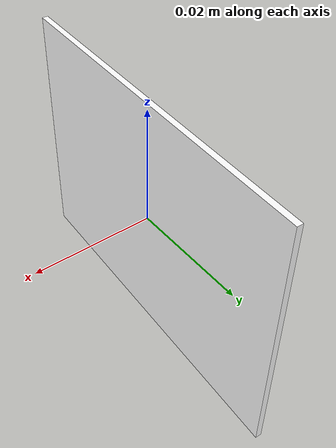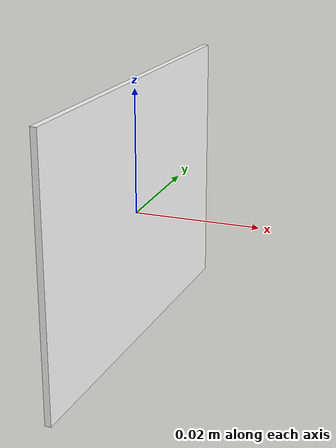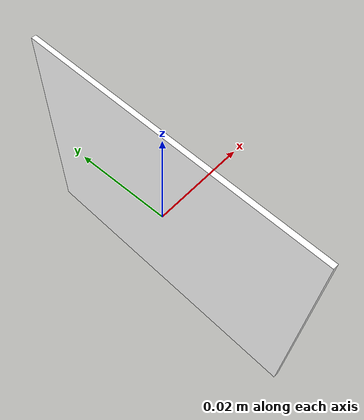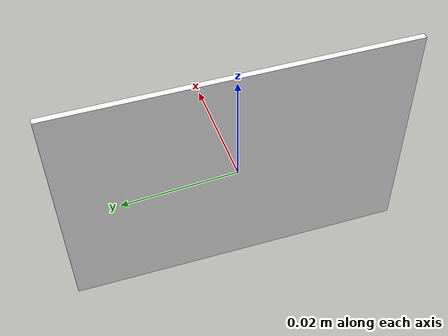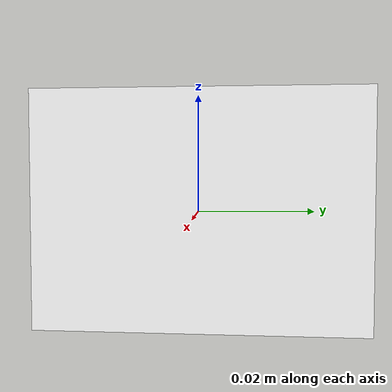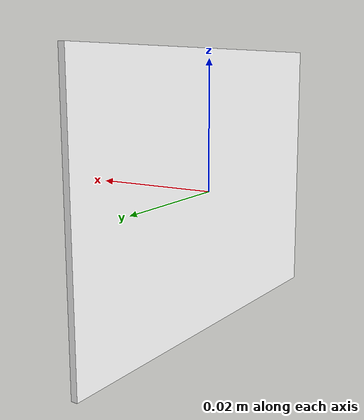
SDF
<?xml version='1.0'?>
<sdf version='1.6'>
  <model name='level2_pressed'>
    <link name='link_0'>
      <pose frame=''>4e-06 -2e-06 0 0 0 -1.62013</pose>
      <inertial>
        <mass>1</mass>
        <inertia>
          <ixx>0.166667</ixx>
          <ixy>0</ixy>
          <ixz>0</ixz>
          <iyy>0.166667</iyy>
          <iyz>0</iyz>
          <izz>0.166667</izz>
        </inertia>
        <pose frame=''>0 0 0 0 -0 0</pose>
      </inertial>
      <self_collide>0</self_collide>
      <kinematic>0</kinematic>
      <gravity>1</gravity>
      <visual name='visual'>
        <pose frame=''>0 0 0 0 -0 0</pose>
        <geometry>
          <box>
            <size>0.06 0.001 0.043</size>
          </box>
        </geometry>
        <material>
          <script>
            <uri>model://level2_pressed/materials/scripts</uri>
            <uri>model://level2_pressed/materials/textures</uri>
            <name>Level2_pressed/Picture</name>
          </script>
          <shader type='pixel'>
            <normal_map>__default__</normal_map>
          </shader>
          <ambient>1 1 1 1</ambient>
          <diffuse>1 1 1 1</diffuse>
          <specular>0 0 0 1</specular>
          <emissive>0 0 0 1</emissive>
        </material>
        <transparency>0</transparency>
        <cast_shadows>1</cast_shadows>
      </visual>
    </link>
    <static>1</static>
    <allow_auto_disable>1</allow_auto_disable>
  </model>
</sdf>
